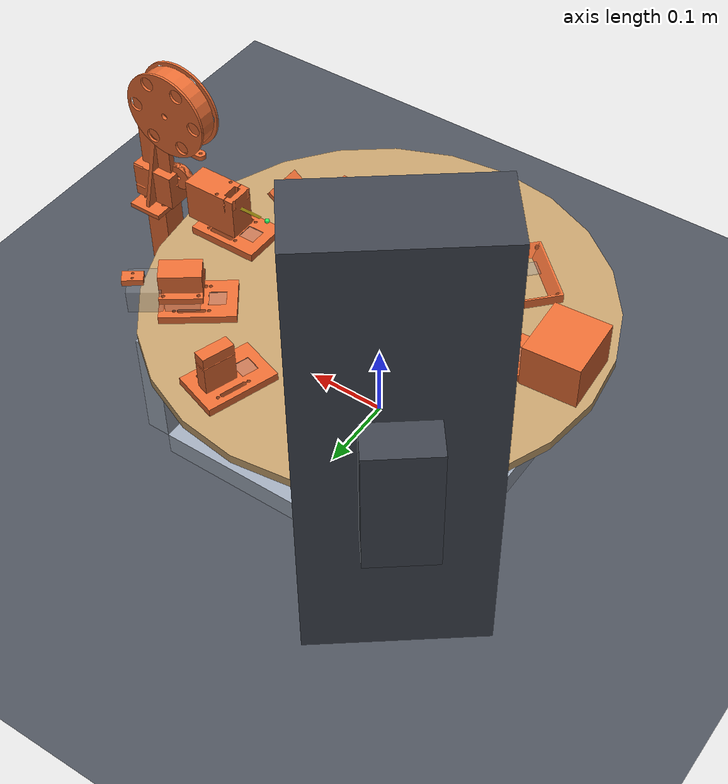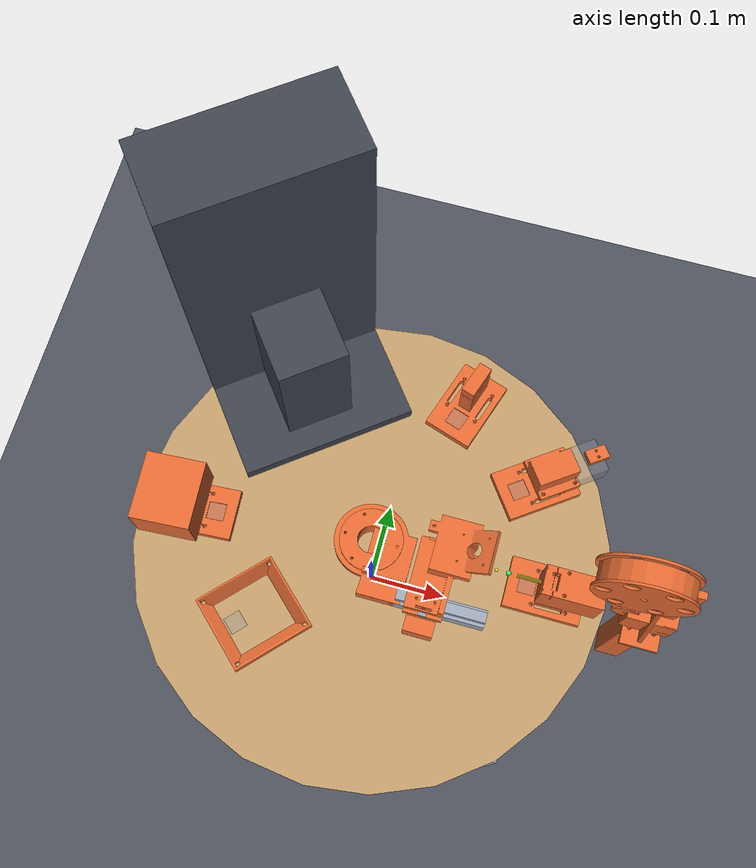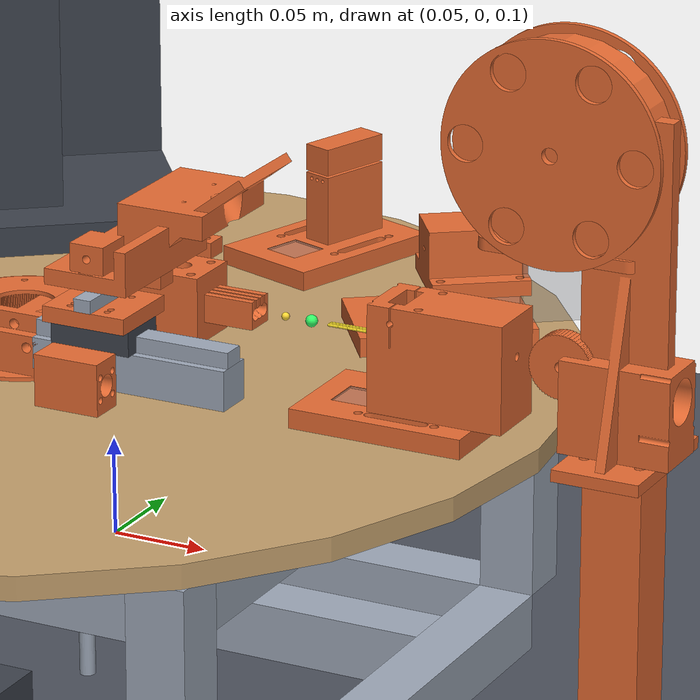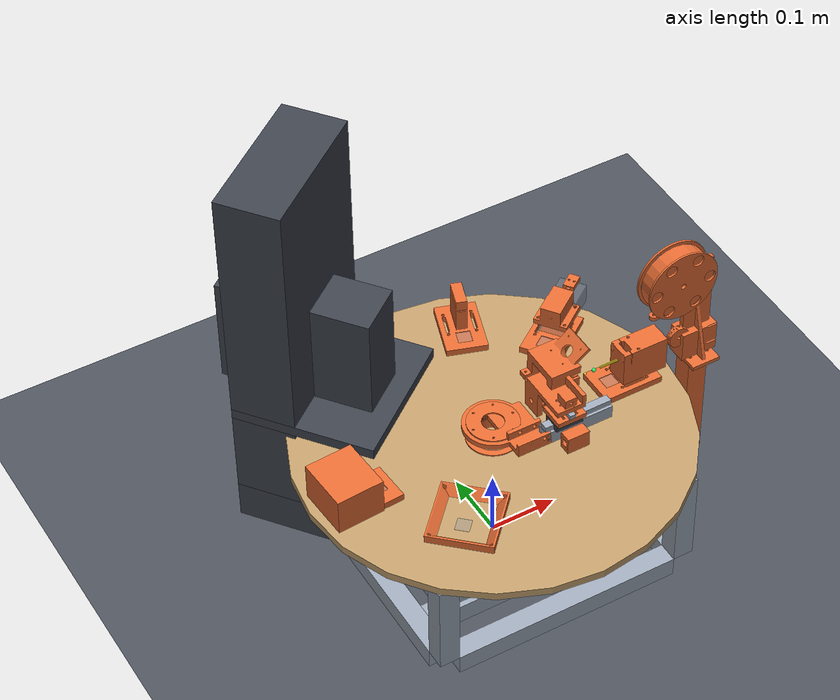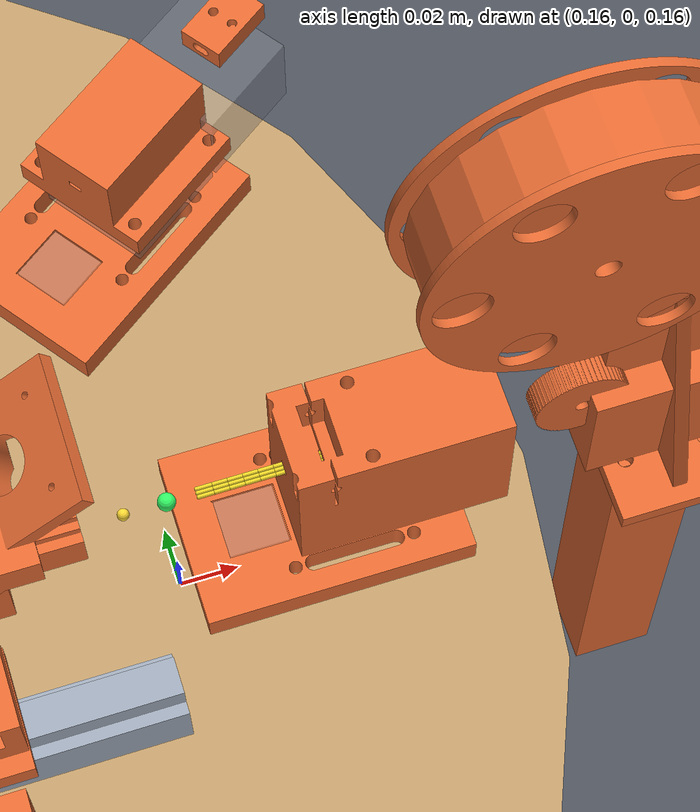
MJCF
<mujoco model="cablecell_roughin">
  <compiler angle="radian" autolimits="true" meshdir="../../cad/parts"/>
  <option integrator="implicitfast" timestep="0.002"/>

  <visual>
    <headlight ambient="0.45 0.45 0.45" diffuse="0.55 0.55 0.55"/>
    <global azimuth="130" elevation="-22" offwidth="1600" offheight="1000"/>
    <scale forcewidth="0.02" contactwidth="0.04" contactheight="0.02"/>
  </visual>

  <asset>
    <texture type="skybox" builtin="gradient" rgb1="0.30 0.38 0.48" rgb2="0.06 0.08 0.11"
      width="32" height="512"/>
    <texture name="bench_tex" type="2d" builtin="checker" rgb1="0.24 0.22 0.20"
      rgb2="0.30 0.28 0.25" width="300" height="300"/>
    <material name="bench_mat" texture="bench_tex" texrepeat="8 8" reflectance="0.03"/>
    <material name="frame_mat" rgba="0.42 0.45 0.50 1"/>
    <material name="deck_mat" rgba="0.62 0.65 0.70 1"/>
    <material name="press_mat" rgba="0.30 0.33 0.38 1"/>
    <material name="press_plate_mat" rgba="0.55 0.58 0.62 1"/>
    <material name="applicator_mat" rgba="0.80 0.55 0.15 1"/>
    <material name="station_mat" rgba="0.25 0.42 0.60 1"/>
    <material name="reject_mat" rgba="0.60 0.30 0.30 1"/>
    <!-- Printed parts read as printed; anything still grey is grey BECAUSE we
         do not know its shape, not because the modelling is unfinished. -->
    <material name="printed_mat" rgba="0.24 0.52 0.72 1"/>
    <material name="mount_mat" rgba="0.34 0.38 0.44 1"/>
    <material name="pedestal_mat" rgba="0.18 0.40 0.56 1"/>
    <material name="clamp_mat" rgba="0.78 0.38 0.20 1"/>
    <material name="extrusion_mat" rgba="0.58 0.61 0.66 1"/>
    <material name="rail_mat" rgba="0.80 0.82 0.86 1"/>
    <material name="unknown_mat" rgba="0.52 0.52 0.54 0.55"/>
    <material name="zstage_mat" rgba="0.35 0.55 0.42 1"/>
    <material name="rotor_mat" rgba="0.50 0.50 0.55 1"/>
    <material name="arm_mat" rgba="0.72 0.74 0.78 1"/>
    <material name="comb_mat" rgba="0.90 0.85 0.30 1"/>
    <material name="spool_mat" rgba="0.85 0.86 0.88 1"/>
    <material name="ribbon_mat" rgba="0.85 0.95 0.15 1"/>
    <material name="hanger_mat" rgba="0.45 0.48 0.52 1"/>
    <material name="camera_mat" rgba="0.15 0.15 0.17 1"/>
    <material name="cond_mat_0" rgba="0.10 0.10 0.12 1"/>
    <material name="cond_mat_1" rgba="0.85 0.15 0.12 1"/>
    <material name="cond_mat_2" rgba="0.95 0.95 0.95 1"/>
    <material name="chute_mat" rgba="0.45 0.50 0.58 1"/>
    <material name="collect_bin_mat" rgba="0.20 0.55 0.35 1"/>
    <material name="tag_mat" rgba="0.97 0.97 0.97 1"/>
    <material name="screw_mat" rgba="0.72 0.68 0.45 1"/>
    <material name="motor_mat" rgba="0.20 0.22 0.26 1"/>

    <!-- Real CAD geometry from cad/build_parts.py. Same layout.py dimensions
         drive both, so the printed part and the sim cannot disagree. STL is in
         millimetres; MuJoCo is in metres. -->
    <mesh name="comb_mesh" file="comb.stl" scale="0.001 0.001 0.001"/>
    <mesh name="spool_mesh" file="spool.stl" scale="0.001 0.001 0.001"/>
    <mesh name="spool_hanger_mesh" file="spool_hanger.stl" scale="0.001 0.001 0.001"/>
    <mesh name="dancer_arm_mesh" file="dancer_arm.stl" scale="0.001 0.001 0.001"/>
    <mesh name="feed_head_mesh" file="feed_head.stl" scale="0.001 0.001 0.001"/>
    <mesh name="measuring_wheel_mesh" file="measuring_wheel.stl" scale="0.001 0.001 0.001"/>
    <mesh name="splitting_wedge_mesh" file="splitting_wedge.stl" scale="0.001 0.001 0.001"/>
    <mesh name="spreader_plate_mesh" file="spreader_plate.stl" scale="0.001 0.001 0.001"/>
    <mesh name="z_platform_mesh" file="z_platform.stl" scale="0.001 0.001 0.001"/>
    <mesh name="spindle_shaft_mesh" file="spindle_shaft.stl" scale="0.001 0.001 0.001"/>
    <mesh name="radial_carriage_mesh" file="radial_carriage.stl" scale="0.001 0.001 0.001"/>
    <mesh name="wrist_mount_mesh" file="wrist_mount.stl" scale="0.001 0.001 0.001"/>
    <mesh name="camera_mount_mesh" file="camera_mount.stl" scale="0.001 0.001 0.001"/>
    <mesh name="drive_roller_block_mesh" file="drive_roller_block.stl" scale="0.001 0.001 0.001"/>
    <mesh name="station_mount_mesh" file="station_mount.stl" scale="0.001 0.001 0.001"/>
    <mesh name="cross_slide_carrier_mesh" file="cross_slide_carrier.stl" scale="0.001 0.001 0.001"/>
    <mesh name="body_clamp_mesh" file="body_clamp.stl" scale="0.001 0.001 0.001"/>
    <mesh name="strip_die_mesh" file="strip_die.stl" scale="0.001 0.001 0.001"/>
    <mesh name="rotor_plate_mesh" file="rotor_plate.stl" scale="0.001 0.001 0.001"/>
    <mesh name="drop_chute_mesh" file="drop_chute.stl" scale="0.001 0.001 0.001"/>

    <material name="make_stock" rgba="0.62 0.66 0.72 1"/>
    <material name="make_printed" rgba="0.90 0.42 0.20 1"/>
    <material name="make_sheet" rgba="0.76 0.62 0.42 1"/>
    <material name="make_bought" rgba="0.24 0.26 0.30 1"/>
    <material name="make_workpiece" rgba="0.95 0.85 0.15 1"/>
    <material name="make_marker" rgba="0.55 0.57 0.60 0.35"/>
    <material name="make_scene" rgba="0.30 0.32 0.36 1"/>
  </asset>

  <worldbody>
    <light pos="0.4 -0.5 1.6" dir="-0.2 0.25 -1" diffuse="0.6 0.6 0.6"/>
    <light pos="-0.5 0.4 1.2" dir="0.3 -0.25 -1" diffuse="0.35 0.35 0.35"/>

    <geom name="bench" type="plane" size="1.2 1.2 0.05" material="make_scene"/>

    <geom name="press_base" type="box"
      pos="-0.143459 0.18613 0.03"
      size="0.105 0.105 0.03"
      euler="0 0 2.22744" material="make_bought" contype="0" conaffinity="0"/>
    <geom name="press_column" type="box"
      pos="-0.178713 0.231871 0.29"
      size="0.04725 0.105 0.29"
      euler="0 0 2.22744" material="make_bought" contype="0" conaffinity="0"/>
    <geom name="press_baseplate" type="box"
      pos="-0.143459 0.18613 0.2"
      size="0.105 0.105 0.008"
      euler="0 0 2.22744" material="make_bought" contype="0" conaffinity="0"/>
    <geom name="applicator" type="box"
      pos="-0.166352 0.215832 0.2825"
      size="0.1125 0.04 0.0825"
      euler="0 0 2.22744" material="make_bought" contype="0" conaffinity="0"/>
    <site name="crimp_point" pos="-0.122093 0.158409 0.23"
      size="0.006" rgba="1 0.25 0.2 1"/>

    <!-- Frame and deck. Deck raised deliberately to collapse Z travel. -->
    <body name="deck_body">
    <geom name="deck" type="cylinder"
      pos="0 0 0.18"
      size="0.28 0.006"
      material="make_sheet" contype="0" conaffinity="0"/>
    </body>
    <body name="frame_body">
    <geom name="frame_leg_0" type="box" pos="-0.185 -0.185 0.102" size="0.015 0.015 0.072" material="make_stock" contype="0" conaffinity="0"/>
    <geom name="frame_leg_1" type="box" pos="-0.185 0.185 0.102" size="0.015 0.015 0.072" material="make_stock" contype="0" conaffinity="0"/>
    <geom name="frame_leg_2" type="box" pos="0.185 -0.185 0.102" size="0.015 0.015 0.072" material="make_stock" contype="0" conaffinity="0"/>
    <geom name="frame_leg_3" type="box" pos="0.185 0.185 0.102" size="0.015 0.015 0.072" material="make_stock" contype="0" conaffinity="0"/>
    <geom name="frame_bot_x_0" type="box" pos="0 -0.185 0.015" size="0.17 0.015 0.015" material="make_stock" contype="0" conaffinity="0"/>
    <geom name="frame_bot_y_0" type="box" pos="-0.185 0 0.015" size="0.015 0.17 0.015" material="make_stock" contype="0" conaffinity="0"/>
    <geom name="frame_bot_x_1" type="box" pos="0 0.185 0.015" size="0.17 0.015 0.015" material="make_stock" contype="0" conaffinity="0"/>
    <geom name="frame_bot_y_1" type="box" pos="0.185 0 0.015" size="0.015 0.17 0.015" material="make_stock" contype="0" conaffinity="0"/>
    <geom name="frame_top_x_0" type="box" pos="0 -0.185 0.159" size="0.17 0.015 0.015" material="make_stock" contype="0" conaffinity="0"/>
    <geom name="frame_top_y_0" type="box" pos="-0.185 0 0.159" size="0.015 0.17 0.015" material="make_stock" contype="0" conaffinity="0"/>
    <geom name="frame_top_x_1" type="box" pos="0 0.185 0.159" size="0.17 0.015 0.015" material="make_stock" contype="0" conaffinity="0"/>
    <geom name="frame_top_y_1" type="box" pos="0.185 0 0.159" size="0.015 0.17 0.015" material="make_stock" contype="0" conaffinity="0"/>
    <geom name="frame_cross_top_0" type="box" pos="0 -0.11 0.159" size="0.17 0.015 0.015" material="make_stock" contype="0" conaffinity="0"/>
    <geom name="frame_cross_bot_0" type="box" pos="0 -0.11 0.015" size="0.17 0.015 0.015" material="make_stock" contype="0" conaffinity="0"/>
    <geom name="frame_cross_top_1" type="box" pos="0 0.11 0.159" size="0.17 0.015 0.015" material="make_stock" contype="0" conaffinity="0"/>
    <geom name="frame_cross_bot_1" type="box" pos="0 0.11 0.015" size="0.17 0.015 0.015" material="make_stock" contype="0" conaffinity="0"/>
    </body>

    <geom name="s1_feed_mount" type="mesh" mesh="station_mount_mesh" pos="0.215 0 0.186" euler="0 0 0" material="make_printed" contype="0" conaffinity="0"/>
    <geom name="s1_feed_feed_head" type="mesh" mesh="feed_head_mesh" pos="0.21 0 0.196" euler="0 0 0" material="make_printed" contype="0" conaffinity="0"/>
    <geom name="s1_feed_tag" type="box" pos="0.186 0 0.1954" size="0.01 0.01 0.0006" euler="0 0 0" material="make_marker" contype="0" conaffinity="0"/>
    <geom name="s2_slit_mount" type="mesh" mesh="station_mount_mesh" pos="0.174312 0.125859 0.186" euler="0 0 0.625362" material="make_printed" contype="0" conaffinity="0"/>
    <geom name="s2_slit_splitting_wedge" type="mesh" mesh="splitting_wedge_mesh" pos="0.182419 0.131713 0.212" euler="0 0 0.625362" material="make_printed" contype="0" conaffinity="0"/>
    <geom name="s2_slit_splitting_wedge_pedestal" type="box" pos="0.182419 0.131713 0.204" size="0.02 0.02 0.008" euler="0 0 0.625362" material="make_marker" contype="0" conaffinity="0"/>
    <geom name="s2_slit_spreader_plate" type="mesh" mesh="spreader_plate_mesh" pos="0.216471 0.156299 0.226" euler="0 0 0.625362" material="make_printed" contype="0" conaffinity="0"/>
    <geom name="s2_slit_spreader_plate_pedestal" type="box" pos="0.216471 0.156299 0.211" size="0.02 0.02 0.015" euler="0 0 0.625362" material="make_marker" contype="0" conaffinity="0"/>
    <geom name="s2_slit_tag" type="box" pos="0.1508 0.108883 0.1954" size="0.01 0.01 0.0006" euler="0 0 0.625362" material="make_marker" contype="0" conaffinity="0"/>
    <geom name="s3_strip_mount" type="mesh" mesh="station_mount_mesh" pos="0.0676466 0.204081 0.186" euler="0 0 1.25072" material="make_printed" contype="0" conaffinity="0"/>
    <geom name="s3_strip_strip_die" type="mesh" mesh="strip_die_mesh" pos="0.069849 0.210725 0.196" euler="0 0 1.25072" material="make_printed" contype="0" conaffinity="0"/>
    <geom name="s3_strip_tag" type="box" pos="0.0585222 0.176554 0.1954" size="0.01 0.01 0.0006" euler="0 0 1.25072" material="make_marker" contype="0" conaffinity="0"/>
    <geom name="s5_insert_mount" type="mesh" mesh="station_mount_mesh" pos="-0.214579 -0.0134437 0.186" euler="0 0 3.20416" material="make_printed" contype="0" conaffinity="0"/>
    <!-- S5_INSERT: greybox - out of Phase 1 scope -->
    <geom name="s5_insert" type="box" pos="-0.23454 -0.0146943 0.224" size="0.035 0.04 0.028" euler="0 0 3.20416" material="make_printed" contype="0" conaffinity="0"/>
    <geom name="s5_insert_tag" type="box" pos="-0.185636 -0.0116304 0.1954" size="0.01 0.01 0.0006" euler="0 0 3.20416" material="make_marker" contype="0" conaffinity="0"/>
    <!-- S6_DROP: collar over a deck hole, bin under. The cable hangs
         from R=130 and the deck is what is under it — a
         funnel out at the bolt circle would have missed by 68 mm. -->
    <geom name="s6_drop_chute" type="mesh" mesh="drop_chute_mesh" pos="-0.107719 -0.114679 0.186" euler="0 0 3.95828" material="make_printed" contype="0" conaffinity="0"/>
    <geom name="s6_drop_bin" type="box" pos="-0.107719 -0.114679 0.129" size="0.0346637 0.032 0.045" euler="0 0 3.95828" material="make_marker" contype="0" conaffinity="0"/>
    <geom name="s6_drop_tag" type="box" pos="-0.123236 -0.131198 0.2014" size="0.01 0.01 0.0006" euler="0 0 3.95828" material="make_marker" contype="0" conaffinity="0"/>

    <!-- S1's spool + hanger + dancer, off-deck outboard of station 1. -->
    <geom name="spool" type="mesh" mesh="spool_mesh" pos="0.29 0.0155 0.336" euler="1.5708 0 0" material="make_printed" contype="0" conaffinity="0"/>
    <geom name="spool_ribbon" type="cylinder" pos="0.29 0 0.336" size="0.051 0.0115" euler="1.5708 0 0" material="make_printed" contype="0" conaffinity="0"/>
    <geom name="spool_post" type="box" pos="0.324 0 0.093" size="0.015 0.015 0.093" material="make_printed" contype="0" conaffinity="0"/>
    <geom name="spool_hanger" type="mesh" mesh="spool_hanger_mesh" pos="0.324 0 0.186" euler="0 0 1.5708" material="make_printed" contype="0" conaffinity="0"/>
    <geom name="dancer_arm" type="mesh" mesh="dancer_arm_mesh" pos="0.324 0 0.282" euler="0 0 3.14159" material="make_printed" contype="0" conaffinity="0"/>
    <geom name="drive_roller_block" type="mesh" mesh="drive_roller_block_mesh" pos="0.324 0 0.192" euler="0 0 3.14159" material="make_printed" contype="0" conaffinity="0"/>
    <geom name="measuring_wheel" type="mesh" mesh="measuring_wheel_mesh" pos="0.294 0 0.232" euler="1.5708 0 0" material="make_printed" contype="0" conaffinity="0"/>

    <body name="post_body">
    <geom name="z_post_0" type="cylinder" pos="3.45963e-18 0.0565 0.1095" size="0.004 0.0745" material="make_stock" contype="0" conaffinity="0"/>
    <geom name="z_post_1" type="cylinder" pos="-0.0489304 -0.02825 0.1095" size="0.004 0.0745" material="make_stock" contype="0" conaffinity="0"/>
    <geom name="z_post_2" type="cylinder" pos="0.0489304 -0.02825 0.1095" size="0.004 0.0745" material="make_stock" contype="0" conaffinity="0"/>
    <geom name="z_leadscrew" type="cylinder" pos="-1.03789e-17 -0.0565 0.1095" size="0.005 0.0745" material="make_stock" contype="0" conaffinity="0"/>
    <geom name="z_motor" type="box" pos="-1.03789e-17 -0.0565 0.013" size="0.021 0.021 0.020" material="make_bought" contype="0" conaffinity="0"/>
    </body>

    <body name="stock_0_0" pos="0.21 -0.0014 0.23" euler="0 0 0">
      <joint name="stock_0_0_z" type="hinge" axis="0 0 1" stiffness="0.02" damping="0.004" armature="1e-6"/>
      <joint name="stock_0_0_y" type="hinge" axis="0 1 0" stiffness="0.02" damping="0.004" armature="1e-6"/>
      <geom name="stock_0_0" type="capsule" fromto="0 0 0 0.005 0 0" size="0.0007" material="make_workpiece" contype="0" conaffinity="0" mass="0.0273333"/>
      <body name="stock_0_1" pos="0.005 0 0">
        <joint name="stock_0_1_z" type="hinge" axis="0 0 1" stiffness="0.02" damping="0.004" armature="1e-6"/>
        <joint name="stock_0_1_y" type="hinge" axis="0 1 0" stiffness="0.02" damping="0.004" armature="1e-6"/>
        <geom name="stock_0_1" type="capsule" fromto="0 0 0 0.005 0 0" size="0.0007" material="make_workpiece" contype="0" conaffinity="0" mass="0.0273333"/>
        <body name="stock_0_2" pos="0.005 0 0">
          <joint name="stock_0_2_z" type="hinge" axis="0 0 1" stiffness="0.02" damping="0.004" armature="1e-6"/>
          <joint name="stock_0_2_y" type="hinge" axis="0 1 0" stiffness="0.02" damping="0.004" armature="1e-6"/>
          <geom name="stock_0_2" type="capsule" fromto="0 0 0 0.005 0 0" size="0.0007" material="make_workpiece" contype="0" conaffinity="0" mass="0.0273333"/>
          <body name="stock_0_3" pos="0.005 0 0">
            <joint name="stock_0_3_z" type="hinge" axis="0 0 1" stiffness="0.02" damping="0.004" armature="1e-6"/>
            <joint name="stock_0_3_y" type="hinge" axis="0 1 0" stiffness="0.02" damping="0.004" armature="1e-6"/>
            <geom name="stock_0_3" type="capsule" fromto="0 0 0 0.005 0 0" size="0.0007" material="make_workpiece" contype="0" conaffinity="0" mass="0.0273333"/>
            <body name="stock_0_4" pos="0.005 0 0">
              <joint name="stock_0_4_z" type="hinge" axis="0 0 1" stiffness="0.02" damping="0.004" armature="1e-6"/>
              <joint name="stock_0_4_y" type="hinge" axis="0 1 0" stiffness="0.02" damping="0.004" armature="1e-6"/>
              <geom name="stock_0_4" type="capsule" fromto="0 0 0 0.005 0 0" size="0.0007" material="make_workpiece" contype="0" conaffinity="0" mass="0.0273333"/>
              <body name="stock_0_5" pos="0.005 0 0">
                <joint name="stock_0_5_z" type="hinge" axis="0 0 1" stiffness="0.02" damping="0.004" armature="1e-6"/>
                <joint name="stock_0_5_y" type="hinge" axis="0 1 0" stiffness="0.02" damping="0.004" armature="1e-6"/>
                <geom name="stock_0_5" type="capsule" fromto="0 0 0 0.005 0 0" size="0.0007" material="make_workpiece" contype="0" conaffinity="0" mass="0.0273333"/>
              </body>
            </body>
          </body>
        </body>
      </body>
    </body>
    <body name="rib_0_0" pos="0.21 -0.0014 0.23" euler="0 0 3.14159">
      <freejoint name="rib_0_free"/>
      <geom name="rib_0_0" type="capsule" fromto="0 0 0 0.005 0 0" size="0.0007" material="make_workpiece" contype="0" conaffinity="0" mass="0.0273333"/>
      <body name="rib_0_1" pos="0.005 0 0">
        <joint name="rib_0_1_z" type="hinge" axis="0 0 1" stiffness="0.02" damping="0.004" armature="1e-6"/>
        <joint name="rib_0_1_y" type="hinge" axis="0 1 0" stiffness="0.02" damping="0.004" armature="1e-6"/>
        <geom name="rib_0_1" type="capsule" fromto="0 0 0 0.005 0 0" size="0.0007" material="make_workpiece" contype="0" conaffinity="0" mass="0.0273333"/>
        <body name="rib_0_2" pos="0.005 0 0">
          <joint name="rib_0_2_z" type="hinge" axis="0 0 1" stiffness="0.02" damping="0.004" armature="1e-6"/>
          <joint name="rib_0_2_y" type="hinge" axis="0 1 0" stiffness="0.02" damping="0.004" armature="1e-6"/>
          <geom name="rib_0_2" type="capsule" fromto="0 0 0 0.005 0 0" size="0.0007" material="make_workpiece" contype="0" conaffinity="0" mass="0.0273333"/>
          <body name="rib_0_3" pos="0.005 0 0">
            <joint name="rib_0_3_z" type="hinge" axis="0 0 1" stiffness="0.02" damping="0.004" armature="1e-6"/>
            <joint name="rib_0_3_y" type="hinge" axis="0 1 0" stiffness="0.02" damping="0.004" armature="1e-6"/>
            <geom name="rib_0_3" type="capsule" fromto="0 0 0 0.005 0 0" size="0.0007" material="make_workpiece" contype="0" conaffinity="0" mass="0.0273333"/>
            <body name="rib_0_4" pos="0.005 0 0">
              <joint name="rib_0_4_z" type="hinge" axis="0 0 1" stiffness="0.02" damping="0.004" armature="1e-6"/>
              <joint name="rib_0_4_y" type="hinge" axis="0 1 0" stiffness="0.02" damping="0.004" armature="1e-6"/>
              <geom name="rib_0_4" type="capsule" fromto="0 0 0 0.005 0 0" size="0.0007" material="make_workpiece" contype="0" conaffinity="0" mass="0.0273333"/>
              <body name="rib_0_5" pos="0.005 0 0">
                <joint name="rib_0_5_z" type="hinge" axis="0 0 1" stiffness="0.02" damping="0.004" armature="1e-6"/>
                <joint name="rib_0_5_y" type="hinge" axis="0 1 0" stiffness="0.02" damping="0.004" armature="1e-6"/>
                <geom name="rib_0_5" type="capsule" fromto="0 0 0 0.005 0 0" size="0.0007" material="make_workpiece" contype="0" conaffinity="0" mass="0.0273333"/>
                <body name="rib_0_6" pos="0.005 0 0">
                  <joint name="rib_0_6_z" type="hinge" axis="0 0 1" stiffness="0.02" damping="0.004" armature="1e-6"/>
                  <joint name="rib_0_6_y" type="hinge" axis="0 1 0" stiffness="0.02" damping="0.004" armature="1e-6"/>
                  <geom name="rib_0_6" type="capsule" fromto="0 0 0 0.005 0 0" size="0.0007" material="make_workpiece" contype="0" conaffinity="0" mass="0.0273333"/>
                  <body name="rib_0_7" pos="0.005 0 0">
                    <joint name="rib_0_7_z" type="hinge" axis="0 0 1" stiffness="0.02" damping="0.004" armature="1e-6"/>
                    <joint name="rib_0_7_y" type="hinge" axis="0 1 0" stiffness="0.02" damping="0.004" armature="1e-6"/>
                    <geom name="rib_0_7" type="capsule" fromto="0 0 0 0.005 0 0" size="0.0007" material="make_workpiece" contype="0" conaffinity="0" mass="0.0273333"/>
                  </body>
                </body>
              </body>
            </body>
          </body>
        </body>
      </body>
    </body>
    <body name="stock_1_0" pos="0.21 0 0.23" euler="0 0 0">
      <joint name="stock_1_0_z" type="hinge" axis="0 0 1" stiffness="0.02" damping="0.004" armature="1e-6"/>
      <joint name="stock_1_0_y" type="hinge" axis="0 1 0" stiffness="0.02" damping="0.004" armature="1e-6"/>
      <geom name="stock_1_0" type="capsule" fromto="0 0 0 0.005 0 0" size="0.0007" material="make_workpiece" contype="0" conaffinity="0" mass="0.0273333"/>
      <body name="stock_1_1" pos="0.005 0 0">
        <joint name="stock_1_1_z" type="hinge" axis="0 0 1" stiffness="0.02" damping="0.004" armature="1e-6"/>
        <joint name="stock_1_1_y" type="hinge" axis="0 1 0" stiffness="0.02" damping="0.004" armature="1e-6"/>
        <geom name="stock_1_1" type="capsule" fromto="0 0 0 0.005 0 0" size="0.0007" material="make_workpiece" contype="0" conaffinity="0" mass="0.0273333"/>
        <body name="stock_1_2" pos="0.005 0 0">
          <joint name="stock_1_2_z" type="hinge" axis="0 0 1" stiffness="0.02" damping="0.004" armature="1e-6"/>
          <joint name="stock_1_2_y" type="hinge" axis="0 1 0" stiffness="0.02" damping="0.004" armature="1e-6"/>
          <geom name="stock_1_2" type="capsule" fromto="0 0 0 0.005 0 0" size="0.0007" material="make_workpiece" contype="0" conaffinity="0" mass="0.0273333"/>
          <body name="stock_1_3" pos="0.005 0 0">
            <joint name="stock_1_3_z" type="hinge" axis="0 0 1" stiffness="0.02" damping="0.004" armature="1e-6"/>
            <joint name="stock_1_3_y" type="hinge" axis="0 1 0" stiffness="0.02" damping="0.004" armature="1e-6"/>
            <geom name="stock_1_3" type="capsule" fromto="0 0 0 0.005 0 0" size="0.0007" material="make_workpiece" contype="0" conaffinity="0" mass="0.0273333"/>
            <body name="stock_1_4" pos="0.005 0 0">
              <joint name="stock_1_4_z" type="hinge" axis="0 0 1" stiffness="0.02" damping="0.004" armature="1e-6"/>
              <joint name="stock_1_4_y" type="hinge" axis="0 1 0" stiffness="0.02" damping="0.004" armature="1e-6"/>
              <geom name="stock_1_4" type="capsule" fromto="0 0 0 0.005 0 0" size="0.0007" material="make_workpiece" contype="0" conaffinity="0" mass="0.0273333"/>
              <body name="stock_1_5" pos="0.005 0 0">
                <joint name="stock_1_5_z" type="hinge" axis="0 0 1" stiffness="0.02" damping="0.004" armature="1e-6"/>
                <joint name="stock_1_5_y" type="hinge" axis="0 1 0" stiffness="0.02" damping="0.004" armature="1e-6"/>
                <geom name="stock_1_5" type="capsule" fromto="0 0 0 0.005 0 0" size="0.0007" material="make_workpiece" contype="0" conaffinity="0" mass="0.0273333"/>
              </body>
            </body>
          </body>
        </body>
      </body>
    </body>
    <body name="rib_1_0" pos="0.21 0 0.23" euler="0 0 3.14159">
      <freejoint name="rib_1_free"/>
      <geom name="rib_1_0" type="capsule" fromto="0 0 0 0.005 0 0" size="0.0007" material="make_workpiece" contype="0" conaffinity="0" mass="0.0273333"/>
      <body name="rib_1_1" pos="0.005 0 0">
        <joint name="rib_1_1_z" type="hinge" axis="0 0 1" stiffness="0.02" damping="0.004" armature="1e-6"/>
        <joint name="rib_1_1_y" type="hinge" axis="0 1 0" stiffness="0.02" damping="0.004" armature="1e-6"/>
        <geom name="rib_1_1" type="capsule" fromto="0 0 0 0.005 0 0" size="0.0007" material="make_workpiece" contype="0" conaffinity="0" mass="0.0273333"/>
        <body name="rib_1_2" pos="0.005 0 0">
          <joint name="rib_1_2_z" type="hinge" axis="0 0 1" stiffness="0.02" damping="0.004" armature="1e-6"/>
          <joint name="rib_1_2_y" type="hinge" axis="0 1 0" stiffness="0.02" damping="0.004" armature="1e-6"/>
          <geom name="rib_1_2" type="capsule" fromto="0 0 0 0.005 0 0" size="0.0007" material="make_workpiece" contype="0" conaffinity="0" mass="0.0273333"/>
          <body name="rib_1_3" pos="0.005 0 0">
            <joint name="rib_1_3_z" type="hinge" axis="0 0 1" stiffness="0.02" damping="0.004" armature="1e-6"/>
            <joint name="rib_1_3_y" type="hinge" axis="0 1 0" stiffness="0.02" damping="0.004" armature="1e-6"/>
            <geom name="rib_1_3" type="capsule" fromto="0 0 0 0.005 0 0" size="0.0007" material="make_workpiece" contype="0" conaffinity="0" mass="0.0273333"/>
            <body name="rib_1_4" pos="0.005 0 0">
              <joint name="rib_1_4_z" type="hinge" axis="0 0 1" stiffness="0.02" damping="0.004" armature="1e-6"/>
              <joint name="rib_1_4_y" type="hinge" axis="0 1 0" stiffness="0.02" damping="0.004" armature="1e-6"/>
              <geom name="rib_1_4" type="capsule" fromto="0 0 0 0.005 0 0" size="0.0007" material="make_workpiece" contype="0" conaffinity="0" mass="0.0273333"/>
              <body name="rib_1_5" pos="0.005 0 0">
                <joint name="rib_1_5_z" type="hinge" axis="0 0 1" stiffness="0.02" damping="0.004" armature="1e-6"/>
                <joint name="rib_1_5_y" type="hinge" axis="0 1 0" stiffness="0.02" damping="0.004" armature="1e-6"/>
                <geom name="rib_1_5" type="capsule" fromto="0 0 0 0.005 0 0" size="0.0007" material="make_workpiece" contype="0" conaffinity="0" mass="0.0273333"/>
                <body name="rib_1_6" pos="0.005 0 0">
                  <joint name="rib_1_6_z" type="hinge" axis="0 0 1" stiffness="0.02" damping="0.004" armature="1e-6"/>
                  <joint name="rib_1_6_y" type="hinge" axis="0 1 0" stiffness="0.02" damping="0.004" armature="1e-6"/>
                  <geom name="rib_1_6" type="capsule" fromto="0 0 0 0.005 0 0" size="0.0007" material="make_workpiece" contype="0" conaffinity="0" mass="0.0273333"/>
                  <body name="rib_1_7" pos="0.005 0 0">
                    <joint name="rib_1_7_z" type="hinge" axis="0 0 1" stiffness="0.02" damping="0.004" armature="1e-6"/>
                    <joint name="rib_1_7_y" type="hinge" axis="0 1 0" stiffness="0.02" damping="0.004" armature="1e-6"/>
                    <geom name="rib_1_7" type="capsule" fromto="0 0 0 0.005 0 0" size="0.0007" material="make_workpiece" contype="0" conaffinity="0" mass="0.0273333"/>
                  </body>
                </body>
              </body>
            </body>
          </body>
        </body>
      </body>
    </body>
    <body name="stock_2_0" pos="0.21 0.0014 0.23" euler="0 0 0">
      <joint name="stock_2_0_z" type="hinge" axis="0 0 1" stiffness="0.02" damping="0.004" armature="1e-6"/>
      <joint name="stock_2_0_y" type="hinge" axis="0 1 0" stiffness="0.02" damping="0.004" armature="1e-6"/>
      <geom name="stock_2_0" type="capsule" fromto="0 0 0 0.005 0 0" size="0.0007" material="make_workpiece" contype="0" conaffinity="0" mass="0.0273333"/>
      <body name="stock_2_1" pos="0.005 0 0">
        <joint name="stock_2_1_z" type="hinge" axis="0 0 1" stiffness="0.02" damping="0.004" armature="1e-6"/>
        <joint name="stock_2_1_y" type="hinge" axis="0 1 0" stiffness="0.02" damping="0.004" armature="1e-6"/>
        <geom name="stock_2_1" type="capsule" fromto="0 0 0 0.005 0 0" size="0.0007" material="make_workpiece" contype="0" conaffinity="0" mass="0.0273333"/>
        <body name="stock_2_2" pos="0.005 0 0">
          <joint name="stock_2_2_z" type="hinge" axis="0 0 1" stiffness="0.02" damping="0.004" armature="1e-6"/>
          <joint name="stock_2_2_y" type="hinge" axis="0 1 0" stiffness="0.02" damping="0.004" armature="1e-6"/>
          <geom name="stock_2_2" type="capsule" fromto="0 0 0 0.005 0 0" size="0.0007" material="make_workpiece" contype="0" conaffinity="0" mass="0.0273333"/>
          <body name="stock_2_3" pos="0.005 0 0">
            <joint name="stock_2_3_z" type="hinge" axis="0 0 1" stiffness="0.02" damping="0.004" armature="1e-6"/>
            <joint name="stock_2_3_y" type="hinge" axis="0 1 0" stiffness="0.02" damping="0.004" armature="1e-6"/>
            <geom name="stock_2_3" type="capsule" fromto="0 0 0 0.005 0 0" size="0.0007" material="make_workpiece" contype="0" conaffinity="0" mass="0.0273333"/>
            <body name="stock_2_4" pos="0.005 0 0">
              <joint name="stock_2_4_z" type="hinge" axis="0 0 1" stiffness="0.02" damping="0.004" armature="1e-6"/>
              <joint name="stock_2_4_y" type="hinge" axis="0 1 0" stiffness="0.02" damping="0.004" armature="1e-6"/>
              <geom name="stock_2_4" type="capsule" fromto="0 0 0 0.005 0 0" size="0.0007" material="make_workpiece" contype="0" conaffinity="0" mass="0.0273333"/>
              <body name="stock_2_5" pos="0.005 0 0">
                <joint name="stock_2_5_z" type="hinge" axis="0 0 1" stiffness="0.02" damping="0.004" armature="1e-6"/>
                <joint name="stock_2_5_y" type="hinge" axis="0 1 0" stiffness="0.02" damping="0.004" armature="1e-6"/>
                <geom name="stock_2_5" type="capsule" fromto="0 0 0 0.005 0 0" size="0.0007" material="make_workpiece" contype="0" conaffinity="0" mass="0.0273333"/>
              </body>
            </body>
          </body>
        </body>
      </body>
    </body>
    <body name="rib_2_0" pos="0.21 0.0014 0.23" euler="0 0 3.14159">
      <freejoint name="rib_2_free"/>
      <geom name="rib_2_0" type="capsule" fromto="0 0 0 0.005 0 0" size="0.0007" material="make_workpiece" contype="0" conaffinity="0" mass="0.0273333"/>
      <body name="rib_2_1" pos="0.005 0 0">
        <joint name="rib_2_1_z" type="hinge" axis="0 0 1" stiffness="0.02" damping="0.004" armature="1e-6"/>
        <joint name="rib_2_1_y" type="hinge" axis="0 1 0" stiffness="0.02" damping="0.004" armature="1e-6"/>
        <geom name="rib_2_1" type="capsule" fromto="0 0 0 0.005 0 0" size="0.0007" material="make_workpiece" contype="0" conaffinity="0" mass="0.0273333"/>
        <body name="rib_2_2" pos="0.005 0 0">
          <joint name="rib_2_2_z" type="hinge" axis="0 0 1" stiffness="0.02" damping="0.004" armature="1e-6"/>
          <joint name="rib_2_2_y" type="hinge" axis="0 1 0" stiffness="0.02" damping="0.004" armature="1e-6"/>
          <geom name="rib_2_2" type="capsule" fromto="0 0 0 0.005 0 0" size="0.0007" material="make_workpiece" contype="0" conaffinity="0" mass="0.0273333"/>
          <body name="rib_2_3" pos="0.005 0 0">
            <joint name="rib_2_3_z" type="hinge" axis="0 0 1" stiffness="0.02" damping="0.004" armature="1e-6"/>
            <joint name="rib_2_3_y" type="hinge" axis="0 1 0" stiffness="0.02" damping="0.004" armature="1e-6"/>
            <geom name="rib_2_3" type="capsule" fromto="0 0 0 0.005 0 0" size="0.0007" material="make_workpiece" contype="0" conaffinity="0" mass="0.0273333"/>
            <body name="rib_2_4" pos="0.005 0 0">
              <joint name="rib_2_4_z" type="hinge" axis="0 0 1" stiffness="0.02" damping="0.004" armature="1e-6"/>
              <joint name="rib_2_4_y" type="hinge" axis="0 1 0" stiffness="0.02" damping="0.004" armature="1e-6"/>
              <geom name="rib_2_4" type="capsule" fromto="0 0 0 0.005 0 0" size="0.0007" material="make_workpiece" contype="0" conaffinity="0" mass="0.0273333"/>
              <body name="rib_2_5" pos="0.005 0 0">
                <joint name="rib_2_5_z" type="hinge" axis="0 0 1" stiffness="0.02" damping="0.004" armature="1e-6"/>
                <joint name="rib_2_5_y" type="hinge" axis="0 1 0" stiffness="0.02" damping="0.004" armature="1e-6"/>
                <geom name="rib_2_5" type="capsule" fromto="0 0 0 0.005 0 0" size="0.0007" material="make_workpiece" contype="0" conaffinity="0" mass="0.0273333"/>
                <body name="rib_2_6" pos="0.005 0 0">
                  <joint name="rib_2_6_z" type="hinge" axis="0 0 1" stiffness="0.02" damping="0.004" armature="1e-6"/>
                  <joint name="rib_2_6_y" type="hinge" axis="0 1 0" stiffness="0.02" damping="0.004" armature="1e-6"/>
                  <geom name="rib_2_6" type="capsule" fromto="0 0 0 0.005 0 0" size="0.0007" material="make_workpiece" contype="0" conaffinity="0" mass="0.0273333"/>
                  <body name="rib_2_7" pos="0.005 0 0">
                    <joint name="rib_2_7_z" type="hinge" axis="0 0 1" stiffness="0.02" damping="0.004" armature="1e-6"/>
                    <joint name="rib_2_7_y" type="hinge" axis="0 1 0" stiffness="0.02" damping="0.004" armature="1e-6"/>
                    <geom name="rib_2_7" type="capsule" fromto="0 0 0 0.005 0 0" size="0.0007" material="make_workpiece" contype="0" conaffinity="0" mass="0.0273333"/>
                  </body>
                </body>
              </body>
            </body>
          </body>
        </body>
      </body>
    </body>

    <!-- ============ the moving assembly ============ -->
    <body name="z_carriage" pos="0 0 0.1">
      <joint name="Z" type="slide" axis="0 0 1" range="0 0.05"
        damping="40"/>
      <geom name="z_platform" type="mesh" mesh="z_platform_mesh" pos="0 0 0"
        material="make_printed" contype="0" conaffinity="0"/>

      <body name="rotor" pos="0 0 0.028">
        <joint name="T" type="hinge" axis="0 0 1"
          range="0 4.71239"
          damping="12"/>
        <geom name="spindle" type="mesh" mesh="spindle_shaft_mesh" pos="0 0 -0.018"
          material="make_printed" contype="0" conaffinity="0"/>

        <body name="arm" pos="0 0 0.076">
          <geom name="rotor_plate" type="mesh" mesh="rotor_plate_mesh"
            pos="0 0 0" material="make_printed" contype="0" conaffinity="0"/>
          <geom name="arm_beam" type="box"
            pos="0.09625 -0.0562 0.01"
            size="0.05175 0.01 0.01"
            material="make_stock" contype="0" conaffinity="0"/>
          <!-- The beam stops at R=148. It used to run to R0+30=230 —
               a 20 mm bar driven through all seven stations at exactly the
               height of their tooling. -->
          <geom name="mgn12_rail" type="box"
            pos="0.09625 -0.0562 0.024"
            size="0.05175 0.006 0.004"
            material="make_stock" contype="0" conaffinity="0"/>

          <body name="radial" pos="0.078 0 0">
            <joint name="R" type="slide" axis="1 0 0"
              range="0 0.04" damping="20"/>
            <!-- The bought MGN12 block, drawn because it is 5 mm of the stack
                 and was previously invisible. -->
            <geom name="mgn12_block" type="box"
              pos="0 -0.0562 0.0265"
              size="0.021 0.0135 0.0065"
              material="make_bought" contype="0" conaffinity="0"/>
            <geom name="radial_carriage" type="mesh" mesh="radial_carriage_mesh"
              pos="0 -0.0562 0.033"
              material="make_printed" contype="0" conaffinity="0"/>
            <!-- MGN9 rail. FIXED to the R carriage, so it lives here and not in
                 the cross body — the block slides along it, not the other way
                 round. -->
            <geom name="mgn9_rail" type="box"
              pos="0 -0.0562 0.04425"
              size="0.0045 0.02 0.00325"
              material="make_stock" contype="0" conaffinity="0"/>
            <geom name="arm_camera" type="mesh" mesh="camera_mount_mesh"
              pos="0 0 0.041"
              material="make_printed" contype="0" conaffinity="0"/>
            <camera name="arm_cam"
              pos="0.04 0 0.081"
              euler="0 -0.652753 0"
              fovy="48"/>

            <body name="cross" pos="0 0 0">
              <joint name="S" type="slide" axis="0 1 0"
                range="-0.01 0.01"
                damping="8"/>
              <geom name="cross_carriage" type="mesh" mesh="cross_slide_carrier_mesh"
                pos="0 -0.0562 0.051"
                material="make_printed" contype="0" conaffinity="0"/>

              <body name="wrist"
                pos="-0.014 0 0.026">
                <joint name="W" type="hinge" axis="1 0 0" range="0 3.14159"
                  damping="6"/>
                <geom name="wrist_hub" type="mesh" mesh="wrist_mount_mesh"
                  pos="0 0 0" material="make_printed"
                  contype="0" conaffinity="0"/>
                <geom name="body_clamp" type="mesh" mesh="body_clamp_mesh"
                  pos="0.01 0 0" material="make_printed"
                  contype="0" conaffinity="0"/>
                <!-- Comb: 3 channels at 8 mm pitch, guiding not clamping. -->
                <geom name="comb_body" type="mesh" mesh="comb_mesh"
                  pos="0.042 0 0"
                  material="make_printed" contype="0" conaffinity="0"/>
                <site name="tail_mid"
                  pos="0.082 0 0"
                  size="0.002" rgba="1 0.85 0.2 1"/>
                <site name="comb_tip"
                  pos="0.096 0 0"
                  size="0.003" rgba="0.2 1 0.4 1"/>
              </body>
            </body>
          </body>
        </body>
      </body>
    </body>
  </worldbody>

  <contact>
    <exclude body1="deck_body" body2="z_carriage"/>
    <exclude body1="deck_body" body2="rotor"/>
    <exclude body1="frame_body" body2="z_carriage"/>
    <exclude body1="frame_body" body2="rotor"/>
    <exclude body1="post_body" body2="z_carriage"/>
  </contact>

  <equality>
    <!-- WEBS: what makes three conductors one ribbon. S2 releases
         the first split_segments() of these and the ribbon fans. -->
    <connect name="web_0_0" body1="rib_0_0" body2="rib_1_0" anchor="0 0.0007 0" solref="0.004 1"/>
    <connect name="web_0_1" body1="rib_0_1" body2="rib_1_1" anchor="0 0.0007 0" solref="0.004 1"/>
    <connect name="web_0_2" body1="rib_0_2" body2="rib_1_2" anchor="0 0.0007 0" solref="0.004 1"/>
    <connect name="web_0_3" body1="rib_0_3" body2="rib_1_3" anchor="0 0.0007 0" solref="0.004 1"/>
    <connect name="web_0_4" body1="rib_0_4" body2="rib_1_4" anchor="0 0.0007 0" solref="0.004 1"/>
    <connect name="web_0_5" body1="rib_0_5" body2="rib_1_5" anchor="0 0.0007 0" solref="0.004 1"/>
    <connect name="web_0_6" body1="rib_0_6" body2="rib_1_6" anchor="0 0.0007 0" solref="0.004 1"/>
    <connect name="web_0_7" body1="rib_0_7" body2="rib_1_7" anchor="0 0.0007 0" solref="0.004 1"/>
    <connect name="web_1_0" body1="rib_1_0" body2="rib_2_0" anchor="0 0.0007 0" solref="0.004 1"/>
    <connect name="web_1_1" body1="rib_1_1" body2="rib_2_1" anchor="0 0.0007 0" solref="0.004 1"/>
    <connect name="web_1_2" body1="rib_1_2" body2="rib_2_2" anchor="0 0.0007 0" solref="0.004 1"/>
    <connect name="web_1_3" body1="rib_1_3" body2="rib_2_3" anchor="0 0.0007 0" solref="0.004 1"/>
    <connect name="web_1_4" body1="rib_1_4" body2="rib_2_4" anchor="0 0.0007 0" solref="0.004 1"/>
    <connect name="web_1_5" body1="rib_1_5" body2="rib_2_5" anchor="0 0.0007 0" solref="0.004 1"/>
    <connect name="web_1_6" body1="rib_1_6" body2="rib_2_6" anchor="0 0.0007 0" solref="0.004 1"/>
    <connect name="web_1_7" body1="rib_1_7" body2="rib_2_7" anchor="0 0.0007 0" solref="0.004 1"/>

    <!-- CUT: the guillotine. One equality per conductor joining
         stock to workpiece at the cut line. Releasing these three
         IS the cut - there is nothing else to it. -->
    <connect name="cut_0" body1="stock_0_0" body2="rib_0_0" anchor="0 0 0" solref="0.004 1"/>
    <connect name="cut_1" body1="stock_1_0" body2="rib_1_0" anchor="0 0 0" solref="0.004 1"/>
    <connect name="cut_2" body1="stock_2_0" body2="rib_2_0" anchor="0 0 0" solref="0.004 1"/>

    <!-- GRIP: the body clamp closing. Sprung closed in reality,
         so 'active' here is the resting state, not the exception. -->
    <weld name="grip_0" body1="wrist" body2="rib_0_1" active="false" solref="0.004 1"/>
    <weld name="grip_1" body1="wrist" body2="rib_1_1" active="false" solref="0.004 1"/>
    <weld name="grip_2" body1="wrist" body2="rib_2_1" active="false" solref="0.004 1"/>
  </equality>

  <actuator>
    <position name="Z_act" joint="Z" kp="800" ctrlrange="0 0.05"/>
    <position name="T_act" joint="T" kp="200"
      ctrlrange="0 4.71239"/>
    <position name="R_act" joint="R" kp="400" ctrlrange="0 0.04"/>
    <position name="S_act" joint="S" kp="200"
      ctrlrange="-0.01 0.01"/>
    <position name="W_act" joint="W" kp="100" ctrlrange="0 3.14159"/>
  </actuator>
</mujoco>
